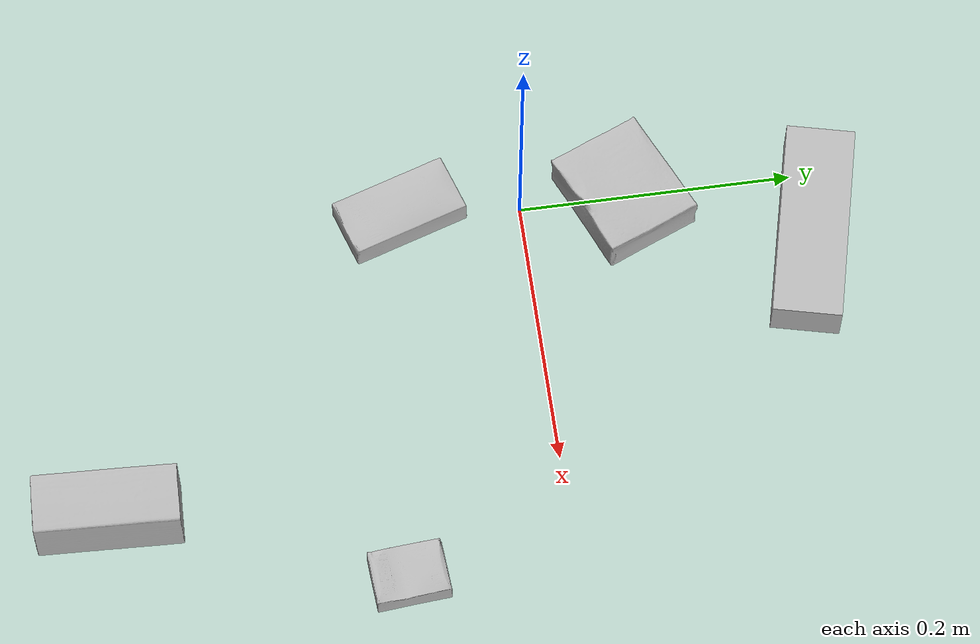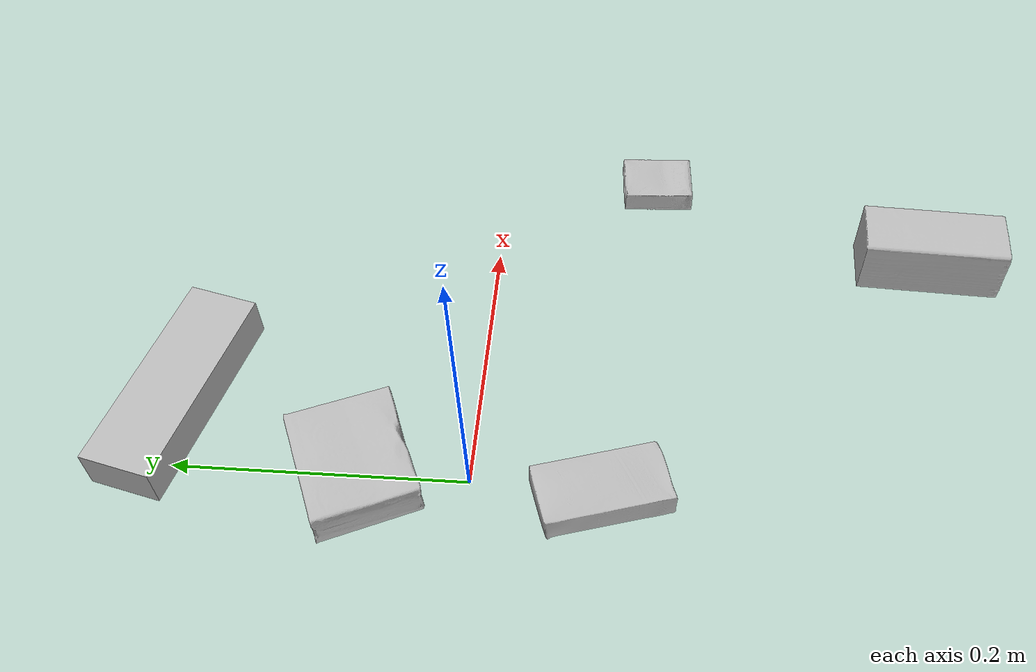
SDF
<sdf version="1.4">
  <world name="default">
    <light name="light1" type="point">
      <pose>0 0 1 0 0 0</pose>
      <diffuse>3 3 3 1</diffuse>
      <specular>3 3 3 1</specular>
    </light>
    <light name="light2" type="point">
      <pose>0 0.5 2 0 0 0</pose>
      <diffuse>1 1 1 1</diffuse>
      <specular>1 1 1 1</specular>
    </light>
    <light name="light3" type="point">
      <pose>0 0.5 2 0 0 0</pose>
      <diffuse>3 3 3 1</diffuse>
      <specular>3 3 3 1</specular>
    </light>
    <scene>
      <ambient>0.7 0.7 0.7</ambient>
    </scene>
    <model name="box1">
      <link name="link_box1">
        <collision name="default">
          <geometry>
            <mesh>
              <uri>model://sugar_box/collision_meshes/collision.obj</uri>
              <scale>0.5 0.5 0.5</scale>
            </mesh>
          </geometry>
          <surface>
            <friction>
              <ode>
                <mu>0.5</mu>
                <mu2>0.5</mu2>
              </ode>
            </friction>
          <contact>
        <ode>
            <max_vel>0</max_vel>
            <min_depth>0.0001</min_depth>
            <kp>1e8</kp>
        </ode>
    </contact></surface>
        </collision>
        <visual name="default">
          <geometry>
            <mesh>
              <uri>model://sugar_box/visual_meshes/visual.dae</uri>
              <scale>0.5 0.5 0.5</scale>
            </mesh>
          </geometry>
        </visual>
        <inertial>
          <mass>0.07249404489994049</mass>
          <pose>0.0005171863012947142 1.924554817378521e-05 -0.00018182402709499002 -0.00040462618385709627 0.0010506635220579009 0.0026153790218148127</pose>
          <inertia>
            <ixx>1.5100456e-05</ixx>
            <iyy>4.8807786e-05</iyy>
            <izz>5.842874e-05</izz>
            <ixy>0</ixy>
            <ixz>0</ixz>
            <iyz>0</iyz>
          </inertia>
        </inertial>
      </link>
      <pose>-0.005729022901505232 -0.08814951032400131 0.011399300768971443 0.0007753010012306992 -0.02343243220665659 1.8733793266763101</pose>
    </model>
    <model name="box2">
      <link name="link_box2">
        <collision name="default">
          <geometry>
            <mesh>
              <uri>model://cracker_box/collision_meshes/collision.obj</uri>
              <scale>0.25 0.25 0.25</scale>
            </mesh>
          </geometry>
          <surface>
            <friction>
              <ode>
                <mu>0.5</mu>
                <mu2>0.5</mu2>
              </ode>
            </friction>
          <contact>
        <ode>
            <max_vel>0</max_vel>
            <min_depth>0.0001</min_depth>
            <kp>1e8</kp>
        </ode>
    </contact></surface>
        </collision>
        <visual name="default">
          <geometry>
            <mesh>
              <uri>model://cracker_box/visual_meshes/visual.dae</uri>
              <scale>0.25 0.25 0.25</scale>
            </mesh>
          </geometry>
        </visual>
        <inertial>
          <mass>0.019660919904708862</mass>
          <pose>0.00023660410079173744 6.358561222441494e-05 -0.0004257383698131889 -0.00031620756431779875 -0.011106489600602764 0.0025467940703044144</pose>
          <inertia>
            <ixx>3.125538e-06</ixx>
            <iyy>5.1608768e-06</iyy>
            <izz>7.365045e-06</izz>
            <ixy>0</ixy>
            <ixz>0</ixz>
            <iyz>0</iyz>
          </inertia>
        </inertial>
      </link>
      <pose>0.2776746451854706 -0.11755587160587311 0.009096028283238411 -0.014050220672076286 -0.005016401020308121 1.6413874598759695</pose>
    </model>
    <model name="box3">
      <link name="link_box3">
        <collision name="default">
          <geometry>
            <mesh>
              <uri>model://wood_block/collision_meshes/collision.obj</uri>
              <scale>0.5 0.5 0.5</scale>
            </mesh>
          </geometry>
          <surface>
            <friction>
              <ode>
                <mu>0.5</mu>
                <mu2>0.5</mu2>
              </ode>
            </friction>
          <contact>
        <ode>
            <max_vel>0</max_vel>
            <min_depth>0.0001</min_depth>
            <kp>1e8</kp>
        </ode>
    </contact></surface>
        </collision>
        <visual name="default">
          <geometry>
            <mesh>
              <uri>model://wood_block/visual_meshes/visual.dae</uri>
              <scale>0.5 0.5 0.5</scale>
            </mesh>
          </geometry>
        </visual>
        <inertial>
          <mass>0.22331082820892334</mass>
          <pose>-2.9066577553749084e-06 -0.000285404734313488 0.00013204292918089777 -0.0522110088927385 -0.005192696049127085 -0.006861379582621758</pose>
          <inertia>
            <ixx>7.470592e-05</ixx>
            <iyy>0.00023599603</iyy>
            <izz>0.0002351133</izz>
            <ixy>0</ixy>
            <ixz>0</ixz>
            <iyz>0</iyz>
          </inertia>
        </inertial>
      </link>
      <pose>0.20627981424331665 -0.3209688365459442 0.022629257291555405 -0.005208537227346391 0.005718762583675829 -1.609692539813617</pose>
    </model>
    <model name="box4">
      <link name="link_box4">
        <collision name="default">
          <geometry>
            <mesh>
              <uri>model://jenga/collision_meshes/collision.obj</uri>
              <scale>1.0 1.0 1.0</scale>
            </mesh>
          </geometry>
          <surface>
            <friction>
              <ode>
                <mu>0.5</mu>
                <mu2>0.5</mu2>
              </ode>
            </friction>
          <contact>
        <ode>
            <max_vel>0</max_vel>
            <min_depth>0.0001</min_depth>
            <kp>1e8</kp>
        </ode>
    </contact></surface>
        </collision>
        <visual name="default">
          <geometry>
            <mesh>
              <uri>model://jenga/visual_meshes/visual.dae</uri>
              <scale>1.0 1.0 1.0</scale>
            </mesh>
          </geometry>
        </visual>
        <inertial>
          <mass>0.1217927634716034</mass>
          <pose>-2.502855807051674e-07 -0.00010250010382151231 -4.0923401684267446e-05 0.0 -7.34215461761844e-07 0.0</pose>
          <inertia>
            <ixx>3.370301e-05</ixx>
            <iyy>0.00022837071</iyy>
            <izz>0.00024380515</izz>
            <ixy>0</ixy>
            <ixz>0</ixz>
            <iyz>0</iyz>
          </inertia>
        </inertial>
      </link>
      <pose>0.05161205679178238 0.2070193737745285 0.015000002458691597 5.471867016590234e-09 3.800643952333431e-09 2.901610742282758</pose>
    </model>
    <model name="box5">
      <link name="link_box5">
        <collision name="default">
          <geometry>
            <mesh>
              <uri>model://gelatin_box/collision_meshes/collision.obj</uri>
              <scale>1.0 1.0 1.0</scale>
            </mesh>
          </geometry>
          <surface>
            <friction>
              <ode>
                <mu>0.5</mu>
                <mu2>0.5</mu2>
              </ode>
            </friction>
          <contact>
        <ode>
            <max_vel>0</max_vel>
            <min_depth>0.0001</min_depth>
            <kp>1e8</kp>
        </ode>
    </contact></surface>
        </collision>
        <visual name="default">
          <geometry>
            <mesh>
              <uri>model://gelatin_box/visual_meshes/visual.dae</uri>
              <scale>1.0 1.0 1.0</scale>
            </mesh>
          </geometry>
        </visual>
        <inertial>
          <mass>0.09479870647192001</mass>
          <pose>0.0004319618456065655 0.00011156871914863586 -0.0003640321083366871 -0.0010503720924044775 -0.0047558191559584585 0.01644055760930107</pose>
          <inertia>
            <ixx>6.6920154e-05</ixx>
            <iyy>4.780071e-05</iyy>
            <izz>0.00010186739</izz>
            <ixy>0</ixy>
            <ixz>0</ixz>
            <iyz>0</iyz>
          </inertia>
        </inertial>
      </link>
      <pose>0.0015915008261799812 0.07562724500894547 0.015168318524956703 0.005596615250426533 -0.007303627557167852 -1.176928147913476</pose>
    </model>
  <physics type="ode">
      <max_contacts>50</max_contacts>
      <ode>
        <solver>
          <type>quick</type>
          <iters>75</iters>
        </solver>
        <constraints>
          <contact_max_correcting_vel>0</contact_max_correcting_vel>
          <contact_surface_layer>0</contact_surface_layer>
        </constraints>
      </ode>
    </physics></world>
</sdf>
